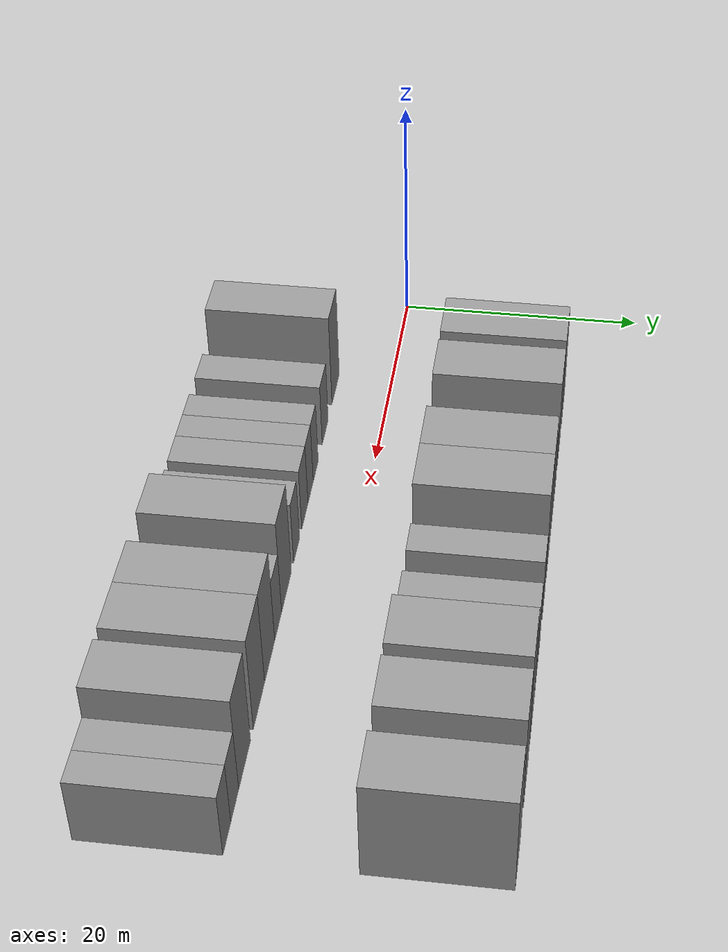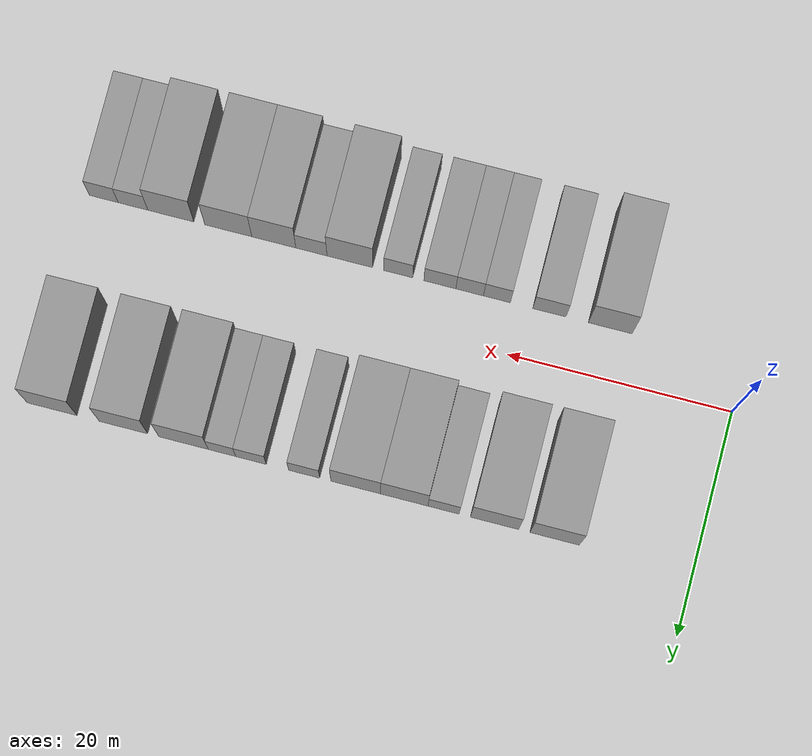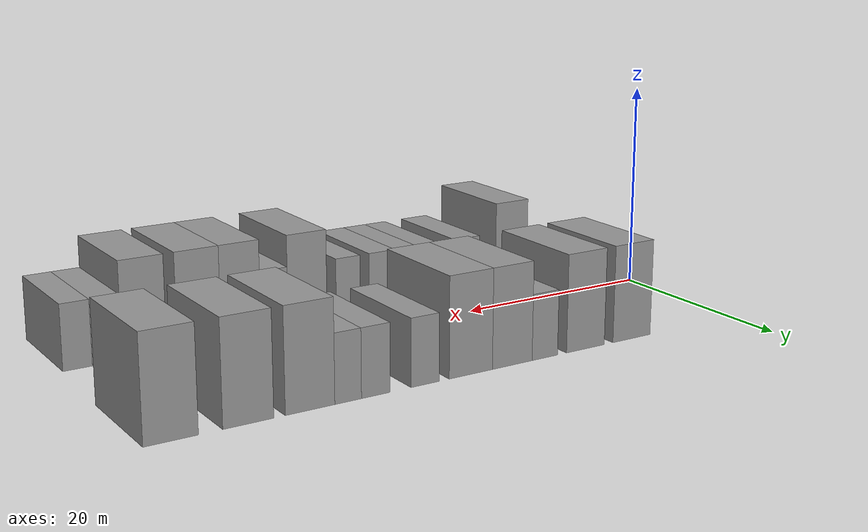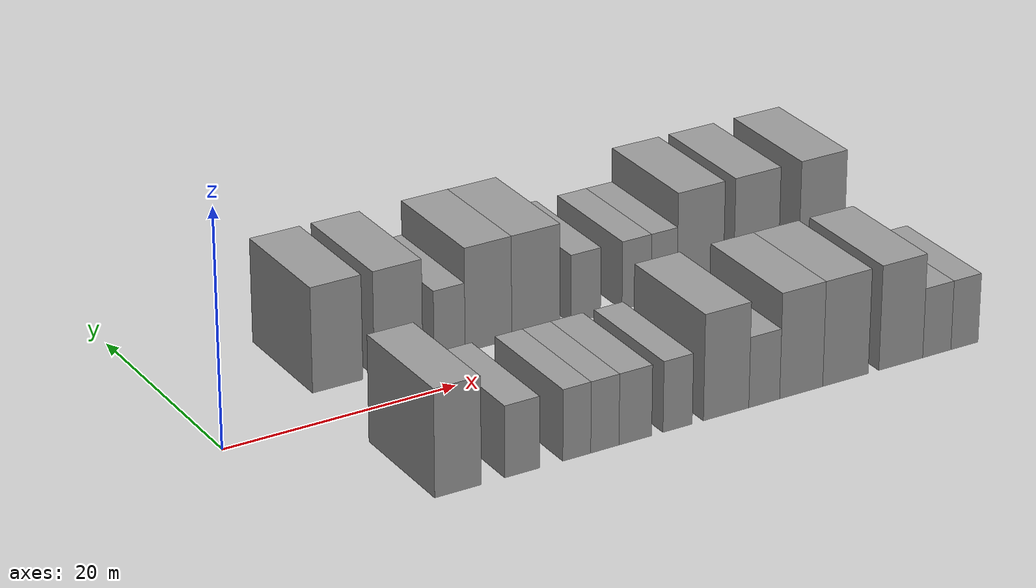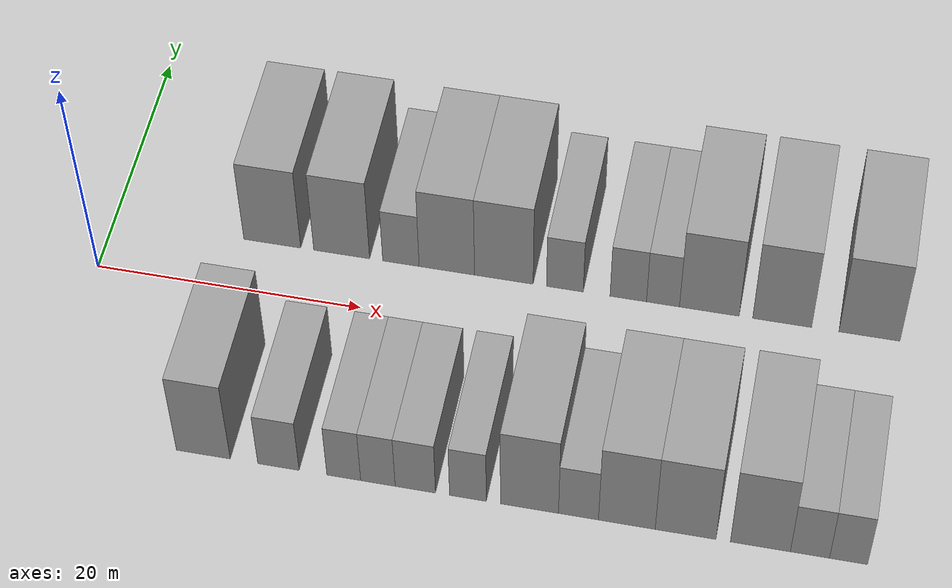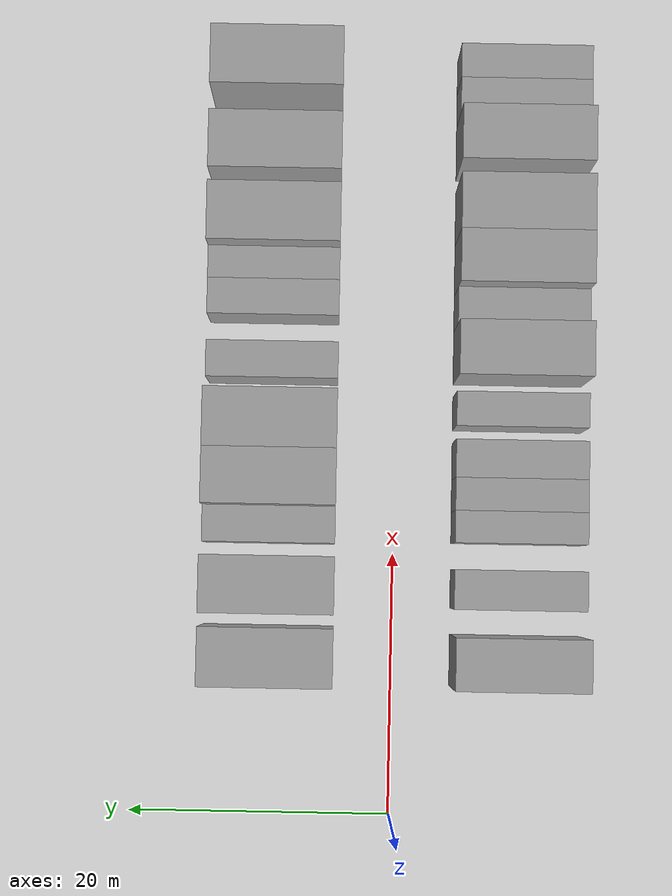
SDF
<sdf version="1.6">
 <world name="default">
  <model name="building_1">
   <static>1</static>
   <pose>12.1943 9.5000 0 0.000000 0.000000 1.570796</pose>
   <link name="link">
    <pose>0 0 4.50 0 0 0</pose>
    <collision name="collision"><geometry><box><size>10.0000 4.3886 9.0000</size></box></geometry></collision>
    <visual name="visual">
     <cast_shadows>0</cast_shadows>
     <geometry><box><size>10.0000 4.3886 9.0000</size></box></geometry>
     <material>
      <script>
       <uri>model://grey_wall/materials/scripts</uri>
       <uri>model://grey_wall/materials/textures</uri>
       <name>vrc/grey_wall</name>
      </script>
     </material>
    </visual>
   </link>
  </model>
  <model name="building_2">
   <static>1</static>
   <pose>17.5279 9.5000 0 0.000000 0.000000 1.570796</pose>
   <link name="link">
    <pose>0 0 4.50 0 0 0</pose>
    <collision name="collision"><geometry><box><size>10.0000 4.2786 9.0000</size></box></geometry></collision>
    <visual name="visual">
     <cast_shadows>0</cast_shadows>
     <geometry><box><size>10.0000 4.2786 9.0000</size></box></geometry>
     <material>
      <script>
       <uri>model://grey_wall/materials/scripts</uri>
       <uri>model://grey_wall/materials/textures</uri>
       <name>vrc/grey_wall</name>
      </script>
     </material>
    </visual>
   </link>
  </model>
  <model name="building_3">
   <static>1</static>
   <pose>22.0547 9.5000 0 0.000000 0.000000 1.570796</pose>
   <link name="link">
    <pose>0 0 3.00 0 0 0</pose>
    <collision name="collision"><geometry><box><size>10.0000 2.7752 6.0000</size></box></geometry></collision>
    <visual name="visual">
     <cast_shadows>0</cast_shadows>
     <geometry><box><size>10.0000 2.7752 6.0000</size></box></geometry>
     <material>
      <script>
       <uri>model://grey_wall/materials/scripts</uri>
       <uri>model://grey_wall/materials/textures</uri>
       <name>vrc/grey_wall</name>
      </script>
     </material>
    </visual>
   </link>
  </model>
  <model name="building_4">
   <static>1</static>
   <pose>25.5473 9.5000 0 0.000000 0.000000 1.570796</pose>
   <link name="link">
    <pose>0 0 4.50 0 0 0</pose>
    <collision name="collision"><geometry><box><size>10.0000 4.2099 9.0000</size></box></geometry></collision>
    <visual name="visual">
     <cast_shadows>0</cast_shadows>
     <geometry><box><size>10.0000 4.2099 9.0000</size></box></geometry>
     <material>
      <script>
       <uri>model://grey_wall/materials/scripts</uri>
       <uri>model://grey_wall/materials/textures</uri>
       <name>vrc/grey_wall</name>
      </script>
     </material>
    </visual>
   </link>
  </model>
  <model name="building_5">
   <static>1</static>
   <pose>29.8634 9.5000 0 0.000000 0.000000 1.570796</pose>
   <link name="link">
    <pose>0 0 4.50 0 0 0</pose>
    <collision name="collision"><geometry><box><size>10.0000 4.4223 9.0000</size></box></geometry></collision>
    <visual name="visual">
     <cast_shadows>0</cast_shadows>
     <geometry><box><size>10.0000 4.4223 9.0000</size></box></geometry>
     <material>
      <script>
       <uri>model://grey_wall/materials/scripts</uri>
       <uri>model://grey_wall/materials/textures</uri>
       <name>vrc/grey_wall</name>
      </script>
     </material>
    </visual>
   </link>
  </model>
  <model name="building_6">
   <static>1</static>
   <pose>34.4579 9.5000 0 0.000000 0.000000 1.570796</pose>
   <link name="link">
    <pose>0 0 3.00 0 0 0</pose>
    <collision name="collision"><geometry><box><size>10.0000 2.7668 6.0000</size></box></geometry></collision>
    <visual name="visual">
     <cast_shadows>0</cast_shadows>
     <geometry><box><size>10.0000 2.7668 6.0000</size></box></geometry>
     <material>
      <script>
       <uri>model://grey_wall/materials/scripts</uri>
       <uri>model://grey_wall/materials/textures</uri>
       <name>vrc/grey_wall</name>
      </script>
     </material>
    </visual>
   </link>
  </model>
  <model name="building_7">
   <static>1</static>
   <pose>39.2007 9.5000 0 0.000000 0.000000 1.570796</pose>
   <link name="link">
    <pose>0 0 3.00 0 0 0</pose>
    <collision name="collision"><geometry><box><size>10.0000 2.7189 6.0000</size></box></geometry></collision>
    <visual name="visual">
     <cast_shadows>0</cast_shadows>
     <geometry><box><size>10.0000 2.7189 6.0000</size></box></geometry>
     <material>
      <script>
       <uri>model://grey_wall/materials/scripts</uri>
       <uri>model://grey_wall/materials/textures</uri>
       <name>vrc/grey_wall</name>
      </script>
     </material>
    </visual>
   </link>
  </model>
  <model name="building_8">
   <static>1</static>
   <pose>41.7880 9.5000 0 0.000000 0.000000 1.570796</pose>
   <link name="link">
    <pose>0 0 3.00 0 0 0</pose>
    <collision name="collision"><geometry><box><size>10.0000 2.4557 6.0000</size></box></geometry></collision>
    <visual name="visual">
     <cast_shadows>0</cast_shadows>
     <geometry><box><size>10.0000 2.4557 6.0000</size></box></geometry>
     <material>
      <script>
       <uri>model://grey_wall/materials/scripts</uri>
       <uri>model://grey_wall/materials/textures</uri>
       <name>vrc/grey_wall</name>
      </script>
     </material>
    </visual>
   </link>
  </model>
  <model name="building_9">
   <static>1</static>
   <pose>45.2294 9.5000 0 0.000000 0.000000 1.570796</pose>
   <link name="link">
    <pose>0 0 4.50 0 0 0</pose>
    <collision name="collision"><geometry><box><size>10.0000 4.4270 9.0000</size></box></geometry></collision>
    <visual name="visual">
     <cast_shadows>0</cast_shadows>
     <geometry><box><size>10.0000 4.4270 9.0000</size></box></geometry>
     <material>
      <script>
       <uri>model://grey_wall/materials/scripts</uri>
       <uri>model://grey_wall/materials/textures</uri>
       <name>vrc/grey_wall</name>
      </script>
     </material>
    </visual>
   </link>
  </model>
  <model name="building_10">
   <static>1</static>
   <pose>50.6140 9.5000 0 0.000000 0.000000 1.570796</pose>
   <link name="link">
    <pose>0 0 4.50 0 0 0</pose>
    <collision name="collision"><geometry><box><size>10.0000 4.3423 9.0000</size></box></geometry></collision>
    <visual name="visual">
     <cast_shadows>0</cast_shadows>
     <geometry><box><size>10.0000 4.3423 9.0000</size></box></geometry>
     <material>
      <script>
       <uri>model://grey_wall/materials/scripts</uri>
       <uri>model://grey_wall/materials/textures</uri>
       <name>vrc/grey_wall</name>
      </script>
     </material>
    </visual>
   </link>
  </model>
  <model name="building_11">
   <static>1</static>
   <pose>57.0152 9.5000 0 0.000000 0.000000 1.570796</pose>
   <link name="link">
    <pose>0 0 4.50 0 0 0</pose>
    <collision name="collision"><geometry><box><size>10.0000 4.4601 9.0000</size></box></geometry></collision>
    <visual name="visual">
     <cast_shadows>0</cast_shadows>
     <geometry><box><size>10.0000 4.4601 9.0000</size></box></geometry>
     <material>
      <script>
       <uri>model://grey_wall/materials/scripts</uri>
       <uri>model://grey_wall/materials/textures</uri>
       <name>vrc/grey_wall</name>
      </script>
     </material>
    </visual>
   </link>
  </model>
  <model name="building_46">
   <static>1</static>
   <pose>11.9577 -9.5000 0 0.000000 0.000000 1.570796</pose>
   <link name="link">
    <pose>0 0 4.50 0 0 0</pose>
    <collision name="collision"><geometry><box><size>10.0000 3.9154 9.0000</size></box></geometry></collision>
    <visual name="visual">
     <cast_shadows>0</cast_shadows>
     <geometry><box><size>10.0000 3.9154 9.0000</size></box></geometry>
     <material>
      <script>
       <uri>model://grey_wall/materials/scripts</uri>
       <uri>model://grey_wall/materials/textures</uri>
       <name>vrc/grey_wall</name>
      </script>
     </material>
    </visual>
   </link>
  </model>
  <model name="building_47">
   <static>1</static>
   <pose>17.4092 -9.5000 0 0.000000 0.000000 1.570796</pose>
   <link name="link">
    <pose>0 0 3.00 0 0 0</pose>
    <collision name="collision"><geometry><box><size>10.0000 2.9876 6.0000</size></box></geometry></collision>
    <visual name="visual">
     <cast_shadows>0</cast_shadows>
     <geometry><box><size>10.0000 2.9876 6.0000</size></box></geometry>
     <material>
      <script>
       <uri>model://grey_wall/materials/scripts</uri>
       <uri>model://grey_wall/materials/textures</uri>
       <name>vrc/grey_wall</name>
      </script>
     </material>
    </visual>
   </link>
  </model>
  <model name="building_48">
   <static>1</static>
   <pose>22.1159 -9.5000 0 0.000000 0.000000 1.570796</pose>
   <link name="link">
    <pose>0 0 3.00 0 0 0</pose>
    <collision name="collision"><geometry><box><size>10.0000 2.4259 6.0000</size></box></geometry></collision>
    <visual name="visual">
     <cast_shadows>0</cast_shadows>
     <geometry><box><size>10.0000 2.4259 6.0000</size></box></geometry>
     <material>
      <script>
       <uri>model://grey_wall/materials/scripts</uri>
       <uri>model://grey_wall/materials/textures</uri>
       <name>vrc/grey_wall</name>
      </script>
     </material>
    </visual>
   </link>
  </model>
  <model name="building_49">
   <static>1</static>
   <pose>24.5654 -9.5000 0 0.000000 0.000000 1.570796</pose>
   <link name="link">
    <pose>0 0 3.00 0 0 0</pose>
    <collision name="collision"><geometry><box><size>10.0000 2.4730 6.0000</size></box></geometry></collision>
    <visual name="visual">
     <cast_shadows>0</cast_shadows>
     <geometry><box><size>10.0000 2.4730 6.0000</size></box></geometry>
     <material>
      <script>
       <uri>model://grey_wall/materials/scripts</uri>
       <uri>model://grey_wall/materials/textures</uri>
       <name>vrc/grey_wall</name>
      </script>
     </material>
    </visual>
   </link>
  </model>
  <model name="building_50">
   <static>1</static>
   <pose>27.2421 -9.5000 0 0.000000 0.000000 1.570796</pose>
   <link name="link">
    <pose>0 0 3.00 0 0 0</pose>
    <collision name="collision"><geometry><box><size>10.0000 2.8804 6.0000</size></box></geometry></collision>
    <visual name="visual">
     <cast_shadows>0</cast_shadows>
     <geometry><box><size>10.0000 2.8804 6.0000</size></box></geometry>
     <material>
      <script>
       <uri>model://grey_wall/materials/scripts</uri>
       <uri>model://grey_wall/materials/textures</uri>
       <name>vrc/grey_wall</name>
      </script>
     </material>
    </visual>
   </link>
  </model>
  <model name="building_51">
   <static>1</static>
   <pose>30.9882 -9.5000 0 0.000000 0.000000 1.570796</pose>
   <link name="link">
    <pose>0 0 3.00 0 0 0</pose>
    <collision name="collision"><geometry><box><size>10.0000 2.6118 6.0000</size></box></geometry></collision>
    <visual name="visual">
     <cast_shadows>0</cast_shadows>
     <geometry><box><size>10.0000 2.6118 6.0000</size></box></geometry>
     <material>
      <script>
       <uri>model://grey_wall/materials/scripts</uri>
       <uri>model://grey_wall/materials/textures</uri>
       <name>vrc/grey_wall</name>
      </script>
     </material>
    </visual>
   </link>
  </model>
  <model name="building_52">
   <static>1</static>
   <pose>35.3466 -9.5000 0 0.000000 0.000000 1.570796</pose>
   <link name="link">
    <pose>0 0 4.50 0 0 0</pose>
    <collision name="collision"><geometry><box><size>10.0000 4.1050 9.0000</size></box></geometry></collision>
    <visual name="visual">
     <cast_shadows>0</cast_shadows>
     <geometry><box><size>10.0000 4.1050 9.0000</size></box></geometry>
     <material>
      <script>
       <uri>model://grey_wall/materials/scripts</uri>
       <uri>model://grey_wall/materials/textures</uri>
       <name>vrc/grey_wall</name>
      </script>
     </material>
    </visual>
   </link>
  </model>
  <model name="building_53">
   <static>1</static>
   <pose>38.8049 -9.5000 0 0.000000 0.000000 1.570796</pose>
   <link name="link">
    <pose>0 0 3.00 0 0 0</pose>
    <collision name="collision"><geometry><box><size>10.0000 2.8116 6.0000</size></box></geometry></collision>
    <visual name="visual">
     <cast_shadows>0</cast_shadows>
     <geometry><box><size>10.0000 2.8116 6.0000</size></box></geometry>
     <material>
      <script>
       <uri>model://grey_wall/materials/scripts</uri>
       <uri>model://grey_wall/materials/textures</uri>
       <name>vrc/grey_wall</name>
      </script>
     </material>
    </visual>
   </link>
  </model>
  <model name="building_54">
   <static>1</static>
   <pose>42.1962 -9.5000 0 0.000000 0.000000 1.570796</pose>
   <link name="link">
    <pose>0 0 4.50 0 0 0</pose>
    <collision name="collision"><geometry><box><size>10.0000 3.9709 9.0000</size></box></geometry></collision>
    <visual name="visual">
     <cast_shadows>0</cast_shadows>
     <geometry><box><size>10.0000 3.9709 9.0000</size></box></geometry>
     <material>
      <script>
       <uri>model://grey_wall/materials/scripts</uri>
       <uri>model://grey_wall/materials/textures</uri>
       <name>vrc/grey_wall</name>
      </script>
     </material>
    </visual>
   </link>
  </model>
  <model name="building_55">
   <static>1</static>
   <pose>46.3022 -9.5000 0 0.000000 0.000000 1.570796</pose>
   <link name="link">
    <pose>0 0 4.50 0 0 0</pose>
    <collision name="collision"><geometry><box><size>10.0000 4.2412 9.0000</size></box></geometry></collision>
    <visual name="visual">
     <cast_shadows>0</cast_shadows>
     <geometry><box><size>10.0000 4.2412 9.0000</size></box></geometry>
     <material>
      <script>
       <uri>model://grey_wall/materials/scripts</uri>
       <uri>model://grey_wall/materials/textures</uri>
       <name>vrc/grey_wall</name>
      </script>
     </material>
    </visual>
   </link>
  </model>
  <model name="building_56">
   <static>1</static>
   <pose>51.4993 -9.5000 0 0.000000 0.000000 1.570796</pose>
   <link name="link">
    <pose>0 0 4.50 0 0 0</pose>
    <collision name="collision"><geometry><box><size>10.0000 4.1528 9.0000</size></box></geometry></collision>
    <visual name="visual">
     <cast_shadows>0</cast_shadows>
     <geometry><box><size>10.0000 4.1528 9.0000</size></box></geometry>
     <material>
      <script>
       <uri>model://grey_wall/materials/scripts</uri>
       <uri>model://grey_wall/materials/textures</uri>
       <name>vrc/grey_wall</name>
      </script>
     </material>
    </visual>
   </link>
  </model>
  <model name="building_57">
   <static>1</static>
   <pose>54.9231 -9.5000 0 0.000000 0.000000 1.570796</pose>
   <link name="link">
    <pose>0 0 3.00 0 0 0</pose>
    <collision name="collision"><geometry><box><size>10.0000 2.6949 6.0000</size></box></geometry></collision>
    <visual name="visual">
     <cast_shadows>0</cast_shadows>
     <geometry><box><size>10.0000 2.6949 6.0000</size></box></geometry>
     <material>
      <script>
       <uri>model://grey_wall/materials/scripts</uri>
       <uri>model://grey_wall/materials/textures</uri>
       <name>vrc/grey_wall</name>
      </script>
     </material>
    </visual>
   </link>
  </model>
  <model name="building_58">
   <static>1</static>
   <pose>57.5775 -9.5000 0 0.000000 0.000000 1.570796</pose>
   <link name="link">
    <pose>0 0 3.00 0 0 0</pose>
    <collision name="collision"><geometry><box><size>10.0000 2.6140 6.0000</size></box></geometry></collision>
    <visual name="visual">
     <cast_shadows>0</cast_shadows>
     <geometry><box><size>10.0000 2.6140 6.0000</size></box></geometry>
     <material>
      <script>
       <uri>model://grey_wall/materials/scripts</uri>
       <uri>model://grey_wall/materials/textures</uri>
       <name>vrc/grey_wall</name>
      </script>
     </material>
    </visual>
   </link>
  </model>
 </world>
</sdf>
